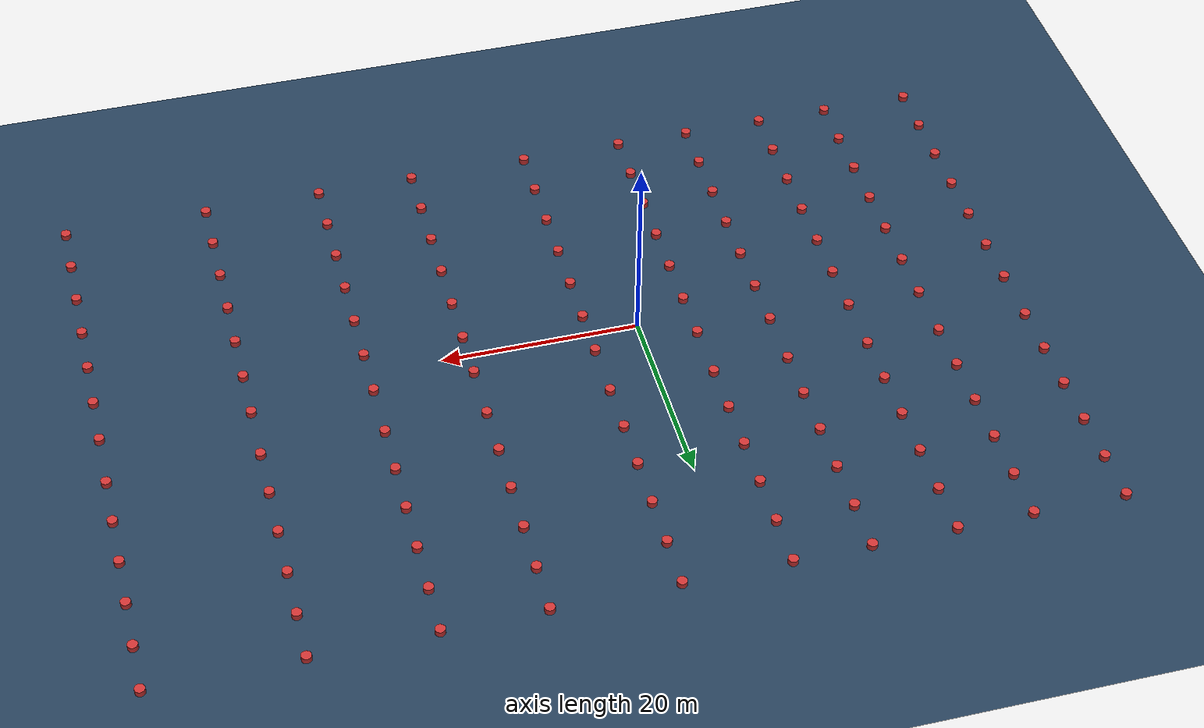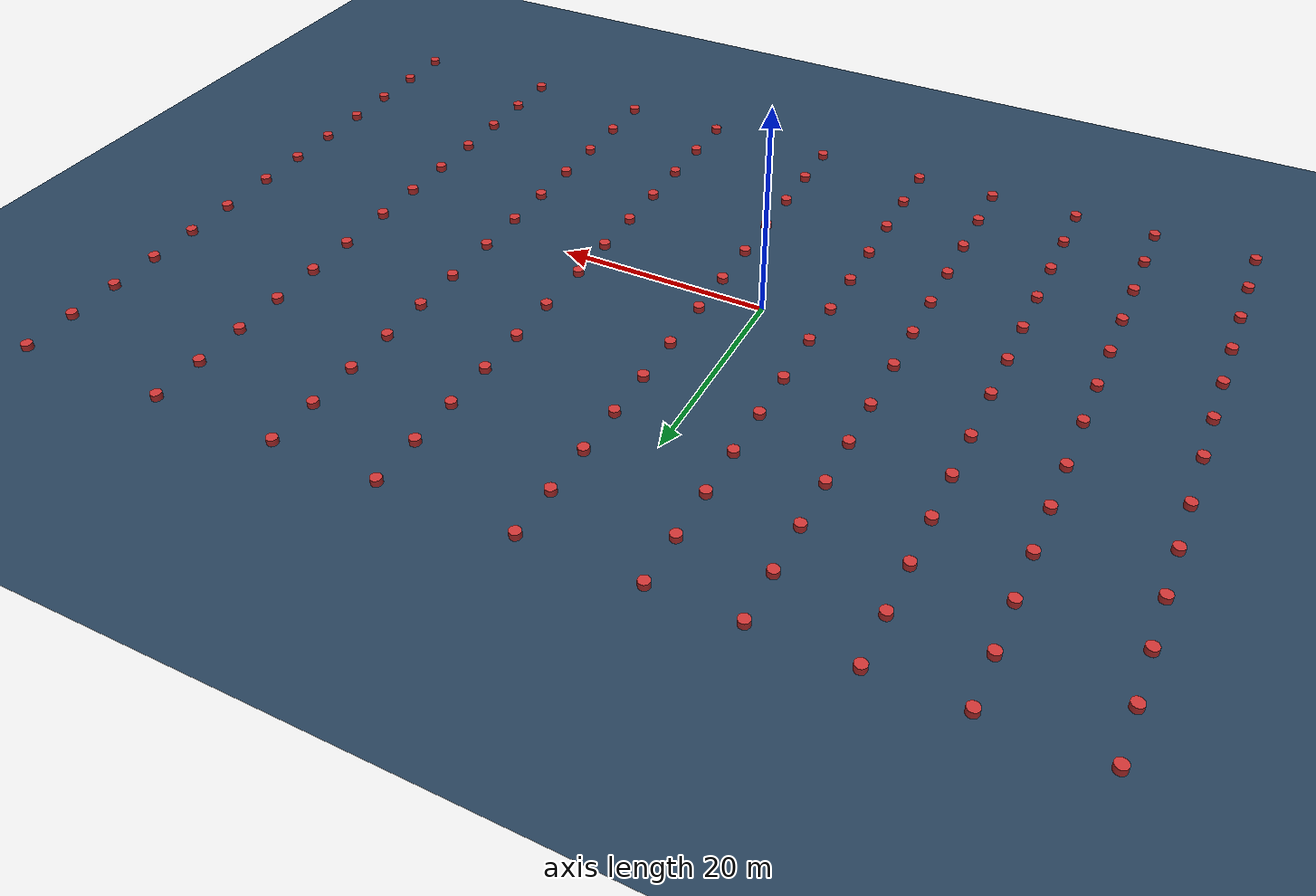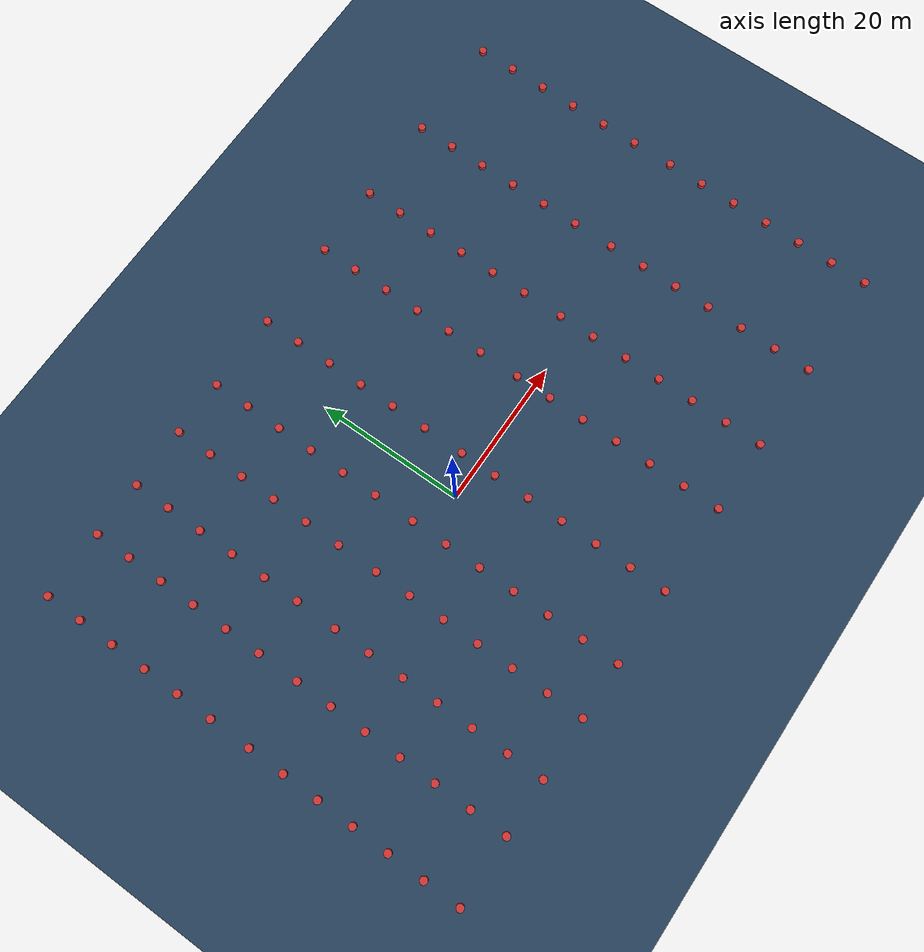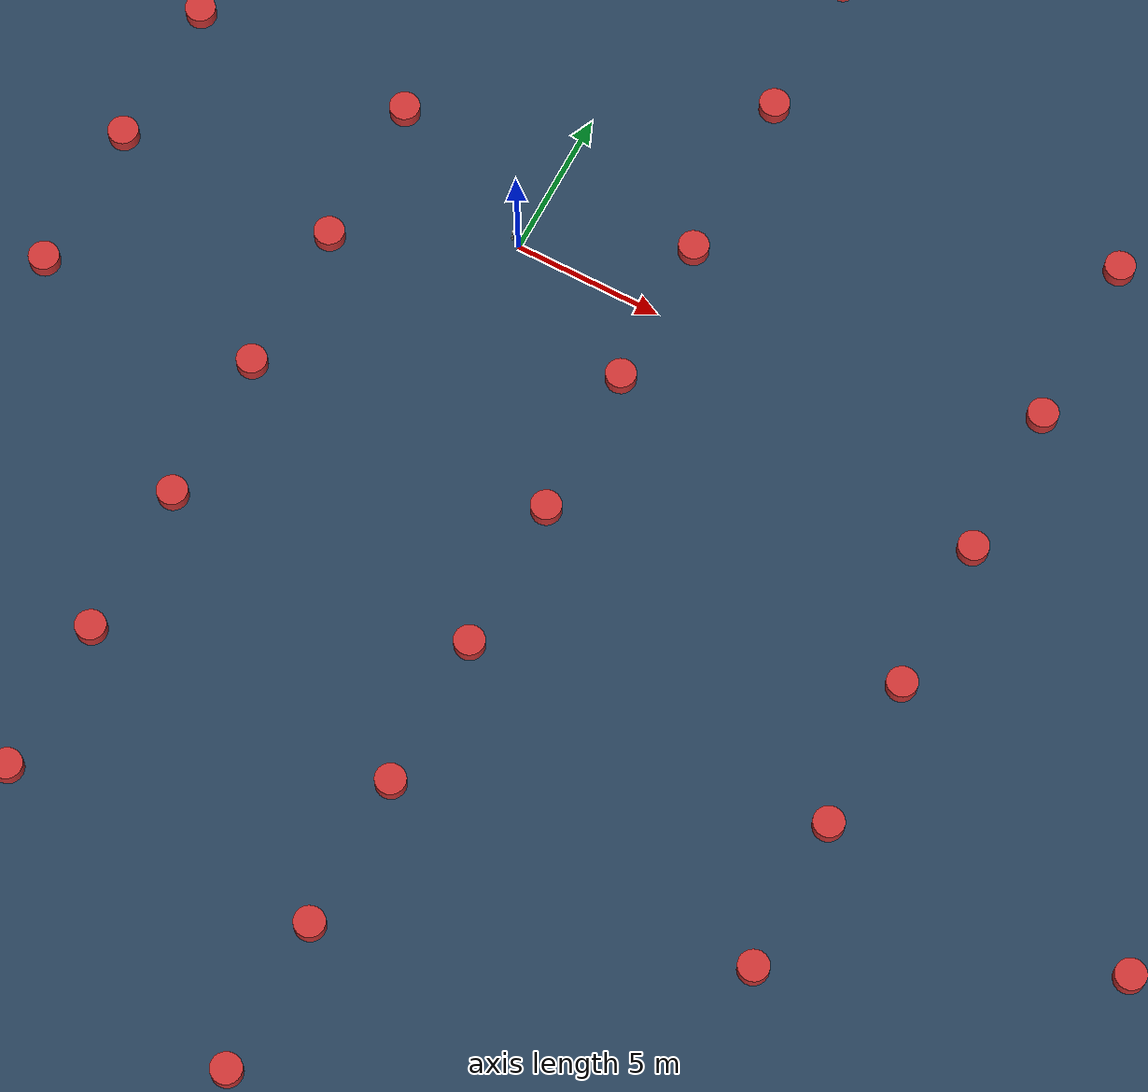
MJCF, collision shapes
<mujoco model="XXG scene">
  <include file="xxg.xml" />

  <statistic center="0 0 0.1" extent="0.8" />

  <visual>
    <headlight diffuse="0.6 0.6 0.6" ambient="0.3 0.3 0.3" specular="0 0 0" />
    <rgba haze="0.15 0.25 0.35 1" />
    <global azimuth="-130" elevation="-20" />
    <map znear="0.01" zfar="100"/>
  </visual>

  <asset>
    <texture type="skybox" builtin="gradient" rgb1="0.3 0.5 0.7" rgb2="0 0 0" width="512" height="3072" />
    <texture type="2d" name="groundplane" builtin="checker" mark="edge" rgb1="0.2 0.3 0.4" rgb2="0.1 0.2 0.3" markrgb="0.8 0.8 0.8" width="300" height="300" />
    <material name="groundplane" texture="groundplane" texuniform="true" texrepeat="5 5" reflectance="0.2" />
  </asset>

  <worldbody>
    <light pos="0 0 1.5" dir="0 0 -1" directional="true" />
    <geom name="floor" pos="0 0.0 0.01" size="0 0 0.05" type="plane" material="groundplane" />
    <geom name="Cylinder0"  type="cylinder" size="0.5 0.5" pos="5.0 -2.5 0.0" rgba="0.8 0.2 0.2 1"/>
    <geom name="Cylinder1"  type="cylinder" size="0.5 0.5" pos="5.0 2.5 0.0" rgba="0.8 0.2 0.2 1"/>
    <geom name="Cylinder2"  type="cylinder" size="0.5 0.5" pos="5.0 -7.5 0.0" rgba="0.8 0.2 0.2 1"/>
    <geom name="Cylinder3"  type="cylinder" size="0.5 0.5" pos="5.0 -12.5 0.0" rgba="0.8 0.2 0.2 1"/>
    <geom name="Cylinder4"  type="cylinder" size="0.5 0.5" pos="5.0 -17.5 0.0" rgba="0.8 0.2 0.2 1"/>
    <geom name="Cylinder5"  type="cylinder" size="0.5 0.5" pos="5.0 -22.5 0.0" rgba="0.8 0.2 0.2 1"/>
    <geom name="Cylinder6"  type="cylinder" size="0.5 0.5" pos="5.0 -27.5 0.0" rgba="0.8 0.2 0.2 1"/>
    <geom name="Cylinder7"  type="cylinder" size="0.5 0.5" pos="5.0 33.2 0.0" rgba="0.8 0.2 0.2 1"/>
    <geom name="Cylinder8"  type="cylinder" size="0.5 0.5" pos="5.0 28.2 0.0" rgba="0.8 0.2 0.2 1"/>
    <geom name="Cylinder9"  type="cylinder" size="0.5 0.5" pos="5.0 23.2 0.0" rgba="0.8 0.2 0.2 1"/>
    <geom name="Cylinder10"  type="cylinder" size="0.5 0.5" pos="5.0 18.2 0.0" rgba="0.8 0.2 0.2 1"/>
    <geom name="Cylinder11"  type="cylinder" size="0.5 0.5" pos="5.0 13.2 0.0" rgba="0.8 0.2 0.2 1"/>
    <geom name="Cylinder12"  type="cylinder" size="0.5 0.5" pos="5.0 8.2 0.0" rgba="0.8 0.2 0.2 1"/>
    <geom name="Cylinder13"  type="cylinder" size="0.5 0.5" pos="-5.5 -2.5 0.0" rgba="0.8 0.2 0.2 1"/>
    <geom name="Cylinder14"  type="cylinder" size="0.5 0.5" pos="-5.5 2.5 0.0" rgba="0.8 0.2 0.2 1"/>
    <geom name="Cylinder15"  type="cylinder" size="0.5 0.5" pos="-5.5 -7.5 0.0" rgba="0.8 0.2 0.2 1"/>
    <geom name="Cylinder16"  type="cylinder" size="0.5 0.5" pos="-5.5 -12.5 0.0" rgba="0.8 0.2 0.2 1"/>
    <geom name="Cylinder17"  type="cylinder" size="0.5 0.5" pos="-5.5 -17.5 0.0" rgba="0.8 0.2 0.2 1"/>
    <geom name="Cylinder18"  type="cylinder" size="0.5 0.5" pos="-5.5 -22.5 0.0" rgba="0.8 0.2 0.2 1"/>
    <geom name="Cylinder19"  type="cylinder" size="0.5 0.5" pos="-5.5 -27.5 0.0" rgba="0.8 0.2 0.2 1"/>
    <geom name="Cylinder20"  type="cylinder" size="0.5 0.5" pos="-5.5 33.2 0.0" rgba="0.8 0.2 0.2 1"/>
    <geom name="Cylinder21"  type="cylinder" size="0.5 0.5" pos="-5.5 28.2 0.0" rgba="0.8 0.2 0.2 1"/>
    <geom name="Cylinder22"  type="cylinder" size="0.5 0.5" pos="-5.5 23.2 0.0" rgba="0.8 0.2 0.2 1"/>
    <geom name="Cylinder23"  type="cylinder" size="0.5 0.5" pos="-5.5 18.2 0.0" rgba="0.8 0.2 0.2 1"/>
    <geom name="Cylinder24"  type="cylinder" size="0.5 0.5" pos="-5.5 13.2 0.0" rgba="0.8 0.2 0.2 1"/>
    <geom name="Cylinder25"  type="cylinder" size="0.5 0.5" pos="-5.5 8.2 0.0" rgba="0.8 0.2 0.2 1"/>
    <geom name="Cylinder26"  type="cylinder" size="0.5 0.5" pos="-13.1 -2.5 0.0" rgba="0.8 0.2 0.2 1"/>
    <geom name="Cylinder27"  type="cylinder" size="0.5 0.5" pos="-13.1 2.5 0.0" rgba="0.8 0.2 0.2 1"/>
    <geom name="Cylinder28"  type="cylinder" size="0.5 0.5" pos="-13.1 -7.5 0.0" rgba="0.8 0.2 0.2 1"/>
    <geom name="Cylinder29"  type="cylinder" size="0.5 0.5" pos="-13.1 -12.5 0.0" rgba="0.8 0.2 0.2 1"/>
    <geom name="Cylinder30"  type="cylinder" size="0.5 0.5" pos="-13.1 -17.5 0.0" rgba="0.8 0.2 0.2 1"/>
    <geom name="Cylinder31"  type="cylinder" size="0.5 0.5" pos="-13.1 -22.5 0.0" rgba="0.8 0.2 0.2 1"/>
    <geom name="Cylinder32"  type="cylinder" size="0.5 0.5" pos="-13.1 -27.5 0.0" rgba="0.8 0.2 0.2 1"/>
    <geom name="Cylinder33"  type="cylinder" size="0.5 0.5" pos="-13.1 33.2 0.0" rgba="0.8 0.2 0.2 1"/>
    <geom name="Cylinder34"  type="cylinder" size="0.5 0.5" pos="-13.1 28.2 0.0" rgba="0.8 0.2 0.2 1"/>
    <geom name="Cylinder35"  type="cylinder" size="0.5 0.5" pos="-13.1 23.2 0.0" rgba="0.8 0.2 0.2 1"/>
    <geom name="Cylinder36"  type="cylinder" size="0.5 0.5" pos="-13.1 18.2 0.0" rgba="0.8 0.2 0.2 1"/>
    <geom name="Cylinder37"  type="cylinder" size="0.5 0.5" pos="-13.1 13.2 0.0" rgba="0.8 0.2 0.2 1"/>
    <geom name="Cylinder38"  type="cylinder" size="0.5 0.5" pos="-13.1 8.2 0.0" rgba="0.8 0.2 0.2 1"/>
    <geom name="Cylinder39"  type="cylinder" size="0.5 0.5" pos="-21.4 -2.5 0.0" rgba="0.8 0.2 0.2 1"/>
    <geom name="Cylinder40"  type="cylinder" size="0.5 0.5" pos="-21.4 2.5 0.0" rgba="0.8 0.2 0.2 1"/>
    <geom name="Cylinder41"  type="cylinder" size="0.5 0.5" pos="-21.4 -7.5 0.0" rgba="0.8 0.2 0.2 1"/>
    <geom name="Cylinder42"  type="cylinder" size="0.5 0.5" pos="-21.4 -12.5 0.0" rgba="0.8 0.2 0.2 1"/>
    <geom name="Cylinder43"  type="cylinder" size="0.5 0.5" pos="-21.4 -17.5 0.0" rgba="0.8 0.2 0.2 1"/>
    <geom name="Cylinder44"  type="cylinder" size="0.5 0.5" pos="-21.4 -22.5 0.0" rgba="0.8 0.2 0.2 1"/>
    <geom name="Cylinder45"  type="cylinder" size="0.5 0.5" pos="-21.4 -27.5 0.0" rgba="0.8 0.2 0.2 1"/>
    <geom name="Cylinder46"  type="cylinder" size="0.5 0.5" pos="-21.4 33.2 0.0" rgba="0.8 0.2 0.2 1"/>
    <geom name="Cylinder47"  type="cylinder" size="0.5 0.5" pos="-21.4 28.2 0.0" rgba="0.8 0.2 0.2 1"/>
    <geom name="Cylinder48"  type="cylinder" size="0.5 0.5" pos="-21.4 23.2 0.0" rgba="0.8 0.2 0.2 1"/>
    <geom name="Cylinder49"  type="cylinder" size="0.5 0.5" pos="-21.4 18.2 0.0" rgba="0.8 0.2 0.2 1"/>
    <geom name="Cylinder50"  type="cylinder" size="0.5 0.5" pos="-21.4 13.2 0.0" rgba="0.8 0.2 0.2 1"/>
    <geom name="Cylinder51"  type="cylinder" size="0.5 0.5" pos="-21.4 8.2 0.0" rgba="0.8 0.2 0.2 1"/>
    <geom name="Cylinder52"  type="cylinder" size="0.5 0.5" pos="-28.9 -2.5 0.0" rgba="0.8 0.2 0.2 1"/>
    <geom name="Cylinder53"  type="cylinder" size="0.5 0.5" pos="-28.9 2.5 0.0" rgba="0.8 0.2 0.2 1"/>
    <geom name="Cylinder54"  type="cylinder" size="0.5 0.5" pos="-28.9 -7.5 0.0" rgba="0.8 0.2 0.2 1"/>
    <geom name="Cylinder55"  type="cylinder" size="0.5 0.5" pos="-28.9 -12.5 0.0" rgba="0.8 0.2 0.2 1"/>
    <geom name="Cylinder56"  type="cylinder" size="0.5 0.5" pos="-28.9 -17.5 0.0" rgba="0.8 0.2 0.2 1"/>
    <geom name="Cylinder57"  type="cylinder" size="0.5 0.5" pos="-28.9 -22.5 0.0" rgba="0.8 0.2 0.2 1"/>
    <geom name="Cylinder58"  type="cylinder" size="0.5 0.5" pos="-28.9 -27.5 0.0" rgba="0.8 0.2 0.2 1"/>
    <geom name="Cylinder59"  type="cylinder" size="0.5 0.5" pos="-28.9 33.2 0.0" rgba="0.8 0.2 0.2 1"/>
    <geom name="Cylinder60"  type="cylinder" size="0.5 0.5" pos="-28.9 28.2 0.0" rgba="0.8 0.2 0.2 1"/>
    <geom name="Cylinder61"  type="cylinder" size="0.5 0.5" pos="-28.9 23.2 0.0" rgba="0.8 0.2 0.2 1"/>
    <geom name="Cylinder62"  type="cylinder" size="0.5 0.5" pos="-28.9 18.2 0.0" rgba="0.8 0.2 0.2 1"/>
    <geom name="Cylinder63"  type="cylinder" size="0.5 0.5" pos="-28.9 13.2 0.0" rgba="0.8 0.2 0.2 1"/>
    <geom name="Cylinder64"  type="cylinder" size="0.5 0.5" pos="-28.9 8.2 0.0" rgba="0.8 0.2 0.2 1"/>
    <geom name="Cylinder65"  type="cylinder" size="0.5 0.5" pos="-38.1 -2.5 0.0" rgba="0.8 0.2 0.2 1"/>
    <geom name="Cylinder66"  type="cylinder" size="0.5 0.5" pos="-38.1 2.5 0.0" rgba="0.8 0.2 0.2 1"/>
    <geom name="Cylinder67"  type="cylinder" size="0.5 0.5" pos="-38.1 -7.5 0.0" rgba="0.8 0.2 0.2 1"/>
    <geom name="Cylinder68"  type="cylinder" size="0.5 0.5" pos="-38.1 -12.5 0.0" rgba="0.8 0.2 0.2 1"/>
    <geom name="Cylinder69"  type="cylinder" size="0.5 0.5" pos="-38.1 -17.5 0.0" rgba="0.8 0.2 0.2 1"/>
    <geom name="Cylinder70"  type="cylinder" size="0.5 0.5" pos="-38.1 -22.5 0.0" rgba="0.8 0.2 0.2 1"/>
    <geom name="Cylinder71"  type="cylinder" size="0.5 0.5" pos="-38.1 -27.5 0.0" rgba="0.8 0.2 0.2 1"/>
    <geom name="Cylinder72"  type="cylinder" size="0.5 0.5" pos="-38.1 33.2 0.0" rgba="0.8 0.2 0.2 1"/>
    <geom name="Cylinder73"  type="cylinder" size="0.5 0.5" pos="-38.1 28.2 0.0" rgba="0.8 0.2 0.2 1"/>
    <geom name="Cylinder74"  type="cylinder" size="0.5 0.5" pos="-38.1 23.2 0.0" rgba="0.8 0.2 0.2 1"/>
    <geom name="Cylinder75"  type="cylinder" size="0.5 0.5" pos="-38.1 18.2 0.0" rgba="0.8 0.2 0.2 1"/>
    <geom name="Cylinder76"  type="cylinder" size="0.5 0.5" pos="-38.1 13.2 0.0" rgba="0.8 0.2 0.2 1"/>
    <geom name="Cylinder77"  type="cylinder" size="0.5 0.5" pos="-38.1 8.2 0.0" rgba="0.8 0.2 0.2 1"/>
    <geom name="Cylinder78"  type="cylinder" size="0.5 0.5" pos="17.3 -2.5 0.0" rgba="0.8 0.2 0.2 1"/>
    <geom name="Cylinder79"  type="cylinder" size="0.5 0.5" pos="17.3 2.5 0.0" rgba="0.8 0.2 0.2 1"/>
    <geom name="Cylinder80"  type="cylinder" size="0.5 0.5" pos="17.3 -7.5 0.0" rgba="0.8 0.2 0.2 1"/>
    <geom name="Cylinder81"  type="cylinder" size="0.5 0.5" pos="17.3 -12.5 0.0" rgba="0.8 0.2 0.2 1"/>
    <geom name="Cylinder82"  type="cylinder" size="0.5 0.5" pos="17.3 -17.5 0.0" rgba="0.8 0.2 0.2 1"/>
    <geom name="Cylinder83"  type="cylinder" size="0.5 0.5" pos="17.3 -22.5 0.0" rgba="0.8 0.2 0.2 1"/>
    <geom name="Cylinder84"  type="cylinder" size="0.5 0.5" pos="17.3 -27.5 0.0" rgba="0.8 0.2 0.2 1"/>
    <geom name="Cylinder85"  type="cylinder" size="0.5 0.5" pos="17.3 33.2 0.0" rgba="0.8 0.2 0.2 1"/>
    <geom name="Cylinder86"  type="cylinder" size="0.5 0.5" pos="17.3 28.2 0.0" rgba="0.8 0.2 0.2 1"/>
    <geom name="Cylinder87"  type="cylinder" size="0.5 0.5" pos="17.3 23.2 0.0" rgba="0.8 0.2 0.2 1"/>
    <geom name="Cylinder88"  type="cylinder" size="0.5 0.5" pos="17.3 18.2 0.0" rgba="0.8 0.2 0.2 1"/>
    <geom name="Cylinder89"  type="cylinder" size="0.5 0.5" pos="17.3 13.2 0.0" rgba="0.8 0.2 0.2 1"/>
    <geom name="Cylinder90"  type="cylinder" size="0.5 0.5" pos="17.3 8.2 0.0" rgba="0.8 0.2 0.2 1"/>
    <geom name="Cylinder91"  type="cylinder" size="0.5 0.5" pos="27.3 -2.5 0.0" rgba="0.8 0.2 0.2 1"/>
    <geom name="Cylinder92"  type="cylinder" size="0.5 0.5" pos="27.3 2.5 0.0" rgba="0.8 0.2 0.2 1"/>
    <geom name="Cylinder93"  type="cylinder" size="0.5 0.5" pos="27.3 -7.5 0.0" rgba="0.8 0.2 0.2 1"/>
    <geom name="Cylinder94"  type="cylinder" size="0.5 0.5" pos="27.3 -12.5 0.0" rgba="0.8 0.2 0.2 1"/>
    <geom name="Cylinder95"  type="cylinder" size="0.5 0.5" pos="27.3 -17.5 0.0" rgba="0.8 0.2 0.2 1"/>
    <geom name="Cylinder96"  type="cylinder" size="0.5 0.5" pos="27.3 -22.5 0.0" rgba="0.8 0.2 0.2 1"/>
    <geom name="Cylinder97"  type="cylinder" size="0.5 0.5" pos="27.3 -27.5 0.0" rgba="0.8 0.2 0.2 1"/>
    <geom name="Cylinder98"  type="cylinder" size="0.5 0.5" pos="27.3 33.2 0.0" rgba="0.8 0.2 0.2 1"/>
    <geom name="Cylinder99"  type="cylinder" size="0.5 0.5" pos="27.3 28.2 0.0" rgba="0.8 0.2 0.2 1"/>
    <geom name="Cylinder100"  type="cylinder" size="0.5 0.5" pos="27.3 23.2 0.0" rgba="0.8 0.2 0.2 1"/>
    <geom name="Cylinder101"  type="cylinder" size="0.5 0.5" pos="27.3 18.2 0.0" rgba="0.8 0.2 0.2 1"/>
    <geom name="Cylinder102"  type="cylinder" size="0.5 0.5" pos="27.3 13.2 0.0" rgba="0.8 0.2 0.2 1"/>
    <geom name="Cylinder103"  type="cylinder" size="0.5 0.5" pos="27.3 8.2 0.0" rgba="0.8 0.2 0.2 1"/>
    <geom name="Cylinder104"  type="cylinder" size="0.5 0.5" pos="39.3 -2.5 0.0" rgba="0.8 0.2 0.2 1"/>
    <geom name="Cylinder105"  type="cylinder" size="0.5 0.5" pos="39.3 2.5 0.0" rgba="0.8 0.2 0.2 1"/>
    <geom name="Cylinder106"  type="cylinder" size="0.5 0.5" pos="39.3 -7.5 0.0" rgba="0.8 0.2 0.2 1"/>
    <geom name="Cylinder107"  type="cylinder" size="0.5 0.5" pos="39.3 -12.5 0.0" rgba="0.8 0.2 0.2 1"/>
    <geom name="Cylinder108"  type="cylinder" size="0.5 0.5" pos="39.3 -17.5 0.0" rgba="0.8 0.2 0.2 1"/>
    <geom name="Cylinder109"  type="cylinder" size="0.5 0.5" pos="39.3 -22.5 0.0" rgba="0.8 0.2 0.2 1"/>
    <geom name="Cylinder110"  type="cylinder" size="0.5 0.5" pos="39.3 -27.5 0.0" rgba="0.8 0.2 0.2 1"/>
    <geom name="Cylinder111"  type="cylinder" size="0.5 0.5" pos="39.3 33.2 0.0" rgba="0.8 0.2 0.2 1"/>
    <geom name="Cylinder112"  type="cylinder" size="0.5 0.5" pos="39.3 28.2 0.0" rgba="0.8 0.2 0.2 1"/>
    <geom name="Cylinder113"  type="cylinder" size="0.5 0.5" pos="39.3 23.2 0.0" rgba="0.8 0.2 0.2 1"/>
    <geom name="Cylinder114"  type="cylinder" size="0.5 0.5" pos="39.3 18.2 0.0" rgba="0.8 0.2 0.2 1"/>
    <geom name="Cylinder115"  type="cylinder" size="0.5 0.5" pos="39.3 13.2 0.0" rgba="0.8 0.2 0.2 1"/>
    <geom name="Cylinder116"  type="cylinder" size="0.5 0.5" pos="39.3 8.2 0.0" rgba="0.8 0.2 0.2 1"/>
    <geom name="Cylinder117"  type="cylinder" size="0.5 0.5" pos="53.9 -2.5 0.0" rgba="0.8 0.2 0.2 1"/>
    <geom name="Cylinder118"  type="cylinder" size="0.5 0.5" pos="53.9 2.5 0.0" rgba="0.8 0.2 0.2 1"/>
    <geom name="Cylinder119"  type="cylinder" size="0.5 0.5" pos="53.9 -7.5 0.0" rgba="0.8 0.2 0.2 1"/>
    <geom name="Cylinder120"  type="cylinder" size="0.5 0.5" pos="53.9 -12.5 0.0" rgba="0.8 0.2 0.2 1"/>
    <geom name="Cylinder121"  type="cylinder" size="0.5 0.5" pos="53.9 -17.5 0.0" rgba="0.8 0.2 0.2 1"/>
    <geom name="Cylinder122"  type="cylinder" size="0.5 0.5" pos="53.9 -22.5 0.0" rgba="0.8 0.2 0.2 1"/>
    <geom name="Cylinder123"  type="cylinder" size="0.5 0.5" pos="53.9 -27.5 0.0" rgba="0.8 0.2 0.2 1"/>
    <geom name="Cylinder124"  type="cylinder" size="0.5 0.5" pos="53.9 33.2 0.0" rgba="0.8 0.2 0.2 1"/>
    <geom name="Cylinder125"  type="cylinder" size="0.5 0.5" pos="53.9 28.2 0.0" rgba="0.8 0.2 0.2 1"/>
    <geom name="Cylinder126"  type="cylinder" size="0.5 0.5" pos="53.9 23.2 0.0" rgba="0.8 0.2 0.2 1"/>
    <geom name="Cylinder127"  type="cylinder" size="0.5 0.5" pos="53.9 18.2 0.0" rgba="0.8 0.2 0.2 1"/>
    <geom name="Cylinder128"  type="cylinder" size="0.5 0.5" pos="53.9 13.2 0.0" rgba="0.8 0.2 0.2 1"/>
    <geom name="Cylinder129"  type="cylinder" size="0.5 0.5" pos="53.9 8.2 0.0" rgba="0.8 0.2 0.2 1"/>
  </worldbody>
</mujoco>

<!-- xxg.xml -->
<mujoco model="DOG">
  <compiler angle="radian" meshdir="assets/"/>

  <asset>
    <mesh name="BASE_LINK" file="BASE_LINK.STL"/>
    <mesh name="FBL_ABAD_LINK" file="FBL_ABAD_LINK.STL"/>
    <mesh name="FBL_HIP_LINK" file="FBL_HIP_LINK.STL"/>
    <mesh name="FBL_KNEE_LINK" file="FBL_KNEE_LINK.STL"/>
    <mesh name="FBL_FOOT_LINK" file="FBL_FOOT_LINK.STL"/>
    <mesh name="FAR_ABAD_LINK" file="FAR_ABAD_LINK.STL"/>
    <mesh name="FAR_HIP_LINK" file="FAR_HIP_LINK.STL"/>
    <mesh name="FAR_KNEE_LINK" file="FAR_KNEE_LINK.STL"/>
    <mesh name="FAR_FOOT_LINK" file="FAR_FOOT_LINK.STL"/>
    <mesh name="RAR_ABAD_LINK" file="RAR_ABAD_LINK.STL"/>
    <mesh name="RAR_HIP_LINK" file="RAR_HIP_LINK.STL"/>
    <mesh name="RAR_KNEE_LINK" file="RAR_KNEE_LINK.STL"/>
    <mesh name="RAR_FOOT_LINK" file="RAR_FOOT_LINK.STL"/>
    <mesh name="RBL_ABAD_LINK" file="RBL_ABAD_LINK.STL"/>
    <mesh name="RBL_HIP_LINK" file="RBL_HIP_LINK.STL"/>
    <mesh name="RBL_KNEE_LINK" file="RBL_KNEE_LINK.STL"/>
    <mesh name="RBL_FOOT_LINK" file="RBL_FOOT_LINK.STL"/>
    <mesh name="HEAD1_LINK" file="HEAD1_LINK.STL"/>
    <mesh name="HEAD2_LINK" file="HEAD2_LINK.STL"/>
  </asset>

  <worldbody>
    <body name="BASE_LINK" pos="0 0 1.0">
      <inertial pos="1.8341473e-02 -1.9475667e-04 1.6646741e-02" quat="-0 0 0 1" mass="5.6608325" diaginertia="0.039340224 8.8059075e-02 7.6312096e-02"/>
      <freejoint />
      <site name="imu" pos="0.0 0 0.0" />
    <!-- add livox_imu -->
    <site name="livox_imu" pos="0.18 0.0 0.3" quat="1.0 0.0 0.0 0.0"/>
    <!-- add camera imu -->
    <site name="camera_imu" pos="0.18 0.0 0.3" quat="1.0 0.0 0.0 0.0"/>

    <geom type="mesh" contype="0" conaffinity="0" group="1" density="0" rgba="0.75294 0.75294 0.75294 1.0" mesh="BASE_LINK"/>
    <geom size="0.2 0.075 0.055" type="box" rgba="0.75294 0.75294 0.75294 0.0"/>
    <geom pos="0.1775 0 0.1164" quat="0.965249 0 0.26133 0" type="mesh" contype="0" conaffinity="0" group="1" density="0" rgba="0.75294 0.75294 0.75294 1.0" mesh="HEAD1_LINK"/>
    <geom pos="0.1775 0 0.1164" quat="0.965249 0 0.26133 0" type="mesh" contype="0" conaffinity="0" group="1" density="0" rgba="0.75294 0.75294 0.75294 1.0" mesh="HEAD2_LINK"/>
    <geom size="0.05 0.1 0.06" pos="0.204181 0 0.181884" quat="0.965249 0 0.26133 0" type="box" rgba="0.75294 0.75294 0.75294 0.0"/>
    <geom size="0.035 0.05 0.04" pos="0.27432 0 0.123528" quat="0.965249 0 0.26133 0" type="box" rgba="0.75294 0.75294 0.75294 0.0"/>
    <body name="FBL_ABAD_LINK" pos="0.1305 0.0377 0">
      <inertial pos="-0.0258732 0.00474653 0" quat="0.446156 0.446156 0.548585 0.548585" mass="0.29007" diaginertia="0.000234429 0.000228281 4.61129e-05"/>
      <joint name="FBL_ABAD_JOINT" pos="0 0 0" axis="1 0 0" range="-0.4887 0.4887" actuatorfrcrange="-20 20"/>
      <geom type="mesh" contype="0" conaffinity="0" group="1" density="0" rgba="0.75294 0.75294 0.75294 1.0" mesh="FBL_ABAD_LINK"/>
      <body name="FBL_HIP_LINK">
        <inertial pos="0 0.0475203 -0.0615104" quat="0.992663 0.120643 7.95638e-06 -0.00808508" mass="0.698577" diaginertia="0.00315469 0.00310141 0.000383698"/>
        <joint name="FBL_HIP_JOINT" pos="0 0 0" axis="0 1 0" range="-2.967 2.967" actuatorfrcrange="-20 20"/>
        <geom type="mesh" contype="0" conaffinity="0" group="1" density="0" rgba="0.75294 0.75294 0.75294 1.0" mesh="FBL_HIP_LINK"/>
        <geom size="0.025 0.015 0.03" pos="-0.01 0.085 -0.06" type="box" rgba="0.75294 0.75294 0.75294 1.0"/>
        <body name="FBL_KNEE_LINK" pos="0 0.08786 -0.1307">
          <inertial pos="0.00368489 0.0063771 -0.0635258" quat="0.608469 0.0177668 -0.0332576 0.792681" mass="0.288584" diaginertia="0.00161384 0.00159203 5.37708e-05"/>
          <joint name="FBL_KNEE_JOINT" pos="0 0 0" axis="0 1 0" range="-2.723 2.702" actuatorfrcrange="-20 20"/>
          <geom type="mesh" contype="0" conaffinity="0" group="1" density="0" rgba="0.49804 0.49804 0.49804 1.0" mesh="FBL_KNEE_LINK"/>
          <geom size="0.015 0.01 0.045" pos="0 0 -0.05" quat="0.994493 0 0.104807 0" type="box" rgba="0.49804 0.49804 0.49804 1.0"/>
          <geom pos="0 0 -0.1425" type="mesh" contype="0" conaffinity="0" group="1" density="0" rgba="0.75294 0.75294 0.75294 1.0" mesh="FBL_FOOT_LINK"/>
          <geom size="0.03" pos="0 0 -0.1425" quat="0.707388 0.706825 0 0" rgba="0.75294 0.75294 0.75294 1.0"/>
        </body>
      </body>
    </body>
    <body name="FAR_ABAD_LINK" pos="0.1305 -0.0377 0">
      <inertial pos="-0.0258732 -0.00474653 0" quat="0.548585 0.548585 0.446156 0.446156" mass="0.29007" diaginertia="0.000234429 0.000228281 4.61129e-05"/>
      <joint name="FAR_ABAD_JOINT" pos="0 0 0" axis="1 0 0" range="-0.4887 0.4887" actuatorfrcrange="-20 20"/>
      <geom type="mesh" contype="0" conaffinity="0" group="1" density="0" rgba="0.75294 0.75294 0.75294 1.0" mesh="FAR_ABAD_LINK"/>
      <body name="FAR_HIP_LINK">
        <inertial pos="0 -0.0475203 -0.0615104" quat="0.992663 -0.120643 7.95638e-06 0.00808508" mass="0.698577" diaginertia="0.00315469 0.00310141 0.000383698"/>
        <joint name="FAR_HIP_JOINT" pos="0 0 0" axis="0 1 0" range="-2.967 2.967" actuatorfrcrange="-20 20"/>
        <geom type="mesh" contype="0" conaffinity="0" group="1" density="0" rgba="0.75294 0.75294 0.75294 1.0" mesh="FAR_HIP_LINK"/>
        <geom size="0.025 0.015 0.03" pos="-0.01 -0.085 -0.06" type="box" rgba="0.75294 0.75294 0.75294 1.0"/>
        <body name="FAR_KNEE_LINK" pos="0 -0.08786 -0.1307">
          <inertial pos="0.00368489 -0.0063771 -0.0635258" quat="0.792681 -0.0332576 0.0177668 0.608469" mass="0.288584" diaginertia="0.00161384 0.00159203 5.37708e-05"/>
          <joint name="FAR_KNEE_JOINT" pos="0 0 0" axis="0 1 0" range="-2.723 2.702" actuatorfrcrange="-20 20"/>
          <geom type="mesh" contype="0" conaffinity="0" group="1" density="0" rgba="0.49804 0.49804 0.49804 1.0" mesh="FAR_KNEE_LINK"/>
          <geom size="0.015 0.01 0.045" pos="0 0 -0.05" quat="0.994493 0 0.104807 0" type="box" rgba="0.49804 0.49804 0.49804 1.0"/>
          <geom pos="0 0 -0.1425" type="mesh" contype="0" conaffinity="0" group="1" density="0" rgba="0.75294 0.75294 0.75294 1.0" mesh="FAR_FOOT_LINK"/>
          <geom size="0.03" pos="0 0 -0.1425" quat="0.707388 0.706825 0 0" rgba="0.75294 0.75294 0.75294 1.0"/>
        </body>
      </body>
    </body>
    <body name="RAR_ABAD_LINK" pos="-0.1305 -0.0377 0">
      <inertial pos="0.0258732 -0.00474653 0" quat="0.446156 0.446156 0.548585 0.548585" mass="0.29007" diaginertia="0.000234429 0.000228281 4.61129e-05"/>
      <joint name="RAR_ABAD_JOINT" pos="0 0 0" axis="1 0 0" range="-0.4887 0.4887" actuatorfrcrange="-20 20"/>
      <geom type="mesh" contype="0" conaffinity="0" group="1" density="0" rgba="0.75294 0.75294 0.75294 1.0" mesh="RAR_ABAD_LINK"/>
      <body name="RAR_HIP_LINK">
        <inertial pos="0 -0.0475203 -0.0615104" quat="0.992663 -0.120643 7.95638e-06 0.00808508" mass="0.698577" diaginertia="0.00315469 0.00310141 0.000383698"/>
        <joint name="RAR_HIP_JOINT" pos="0 0 0" axis="0 1 0" range="-2.967 2.967" actuatorfrcrange="-20 20"/>
        <geom type="mesh" contype="0" conaffinity="0" group="1" density="0" rgba="0.75294 0.75294 0.75294 1.0" mesh="RAR_HIP_LINK"/>
        <geom size="0.025 0.015 0.03" pos="0 -0.085 -0.06" type="box" rgba="0.75294 0.75294 0.75294 1.0"/>
        <body name="RAR_KNEE_LINK" pos="0 -0.08786 -0.1307">
          <inertial pos="0.00368489 -0.0063771 -0.0634925" quat="0.792566 -0.0333078 0.0177921 0.608615" mass="0.288584" diaginertia="0.0016124 0.00159058 5.37526e-05"/>
          <joint name="RAR_KNEE_JOINT" pos="0 0 0" axis="0 1 0" range="-2.723 2.702" actuatorfrcrange="-20 20"/>
          <geom type="mesh" contype="0" conaffinity="0" group="1" density="0" rgba="0.49804 0.49804 0.49804 1.0" mesh="RAR_KNEE_LINK"/>
          <geom size="0.015 0.01 0.045" pos="-0.01 0 -0.04" quat="0.930508 0 0.366273 0" type="box" rgba="0.49804 0.49804 0.49804 1.0"/>
          <geom pos="0 0 -0.1357" quat="1 0 0 0" type="mesh" contype="0" conaffinity="0" group="1" density="0" rgba="0.75294 0.75294 0.75294 1.0" mesh="RAR_FOOT_LINK"/>
          <geom size="0.03" pos="0 0 -0.1357" quat="0.707388 0.706825 0 0" rgba="0.75294 0.75294 0.75294 1.0"/>
        </body>
      </body>
    </body>
    <body name="RBL_ABAD_LINK" pos="-0.1305 0.0377 0">
      <inertial pos="0.0258732 0.00474653 0" quat="0.548585 0.548585 0.446156 0.446156" mass="0.29007" diaginertia="0.000234429 0.000228281 4.61129e-05"/>
      <joint name="RBL_ABAD_JOINT" pos="0 0 0" axis="1 0 0" range="-0.4887 0.4887" actuatorfrcrange="-20 20"/>
      <geom type="mesh" contype="0" conaffinity="0" group="1" density="0" rgba="0.75294 0.75294 0.75294 1.0" mesh="RBL_ABAD_LINK"/>
      <body name="RBL_HIP_LINK">
        <inertial pos="0 0.0475203 -0.0615104" quat="0.992663 0.120643 7.95638e-06 -0.00808508" mass="0.698577" diaginertia="0.00315469 0.00310141 0.000383698"/>
        <joint name="RBL_HIP_JOINT" pos="0 0 0" axis="0 1 0" range="-2.967 2.967" actuatorfrcrange="-20 20"/>
        <geom type="mesh" contype="0" conaffinity="0" group="1" density="0" rgba="0.75294 0.75294 0.75294 1.0" mesh="RBL_HIP_LINK"/>
        <geom size="0.025 0.015 0.03" pos="0 0.085 -0.06" type="box" rgba="0.75294 0.75294 0.75294 1.0"/>
        <body name="RBL_KNEE_LINK" pos="0 0.08786 -0.1307">
          <inertial pos="0.00368489 0.0063771 -0.0634925" quat="0.608615 0.0177921 -0.0333078 0.792566" mass="0.288584" diaginertia="0.0016124 0.00159058 5.37526e-05"/>
          <joint name="RBL_KNEE_JOINT" pos="0 0 0" axis="0 1 0" range="-2.723 2.702" actuatorfrcrange="-20 20"/>
          <geom type="mesh" contype="0" conaffinity="0" group="1" density="0" rgba="0.49804 0.49804 0.49804 1.0" mesh="RBL_KNEE_LINK"/>
          <geom size="0.015 0.01 0.045" pos="-0.01 0 -0.04" quat="0.930508 0 0.366273 0" type="box" rgba="0.49804 0.49804 0.49804 1.0"/>
          <geom pos="0 0 -0.1357" quat="1 0 0 0" type="mesh" contype="0" conaffinity="0" group="1" density="0" rgba="0.75294 0.75294 0.75294 1.0" mesh="RBL_FOOT_LINK"/>
          <geom size="0.03" pos="0 0 -0.1357" quat="0.707388 0.706825 0 0" rgba="0.75294 0.75294 0.75294 1.0"/>
        </body>
      </body>
    </body>
  </body>
  </worldbody>
    <actuator>
        <motor name="FR_ABAD_LINK" joint="FAR_ABAD_JOINT" />
        <motor name="FR_HIP_LINK" joint="FAR_HIP_JOINT" />
        <motor name="FR_KNEE_LINK" joint="FAR_KNEE_JOINT" />
        <motor name="FL_ABAD_LINK" joint="FBL_ABAD_JOINT" />
        <motor name="FL_HIP_LINK" joint="FBL_HIP_JOINT" />
        <motor name="FL_KNEE_LINK" joint="FBL_KNEE_JOINT" />
        <motor name="RR_ABAD_LINK" joint="RAR_ABAD_JOINT" />
        <motor name="RR_HIP_LINK" joint="RAR_HIP_JOINT" />
        <motor name="RR_KNEE_LINK" joint="RAR_KNEE_JOINT" />
        <motor name="RL_ABAD_LINK" joint="RBL_ABAD_JOINT" />
        <motor name="RL_HIP_LINK" joint="RBL_HIP_JOINT" />
        <motor name="RL_KNEE_LINK" joint="RBL_KNEE_JOINT" />
    </actuator>

    <sensor>
        <jointpos name="FR_hip_pos" joint="FAR_ABAD_JOINT" />
        <jointpos name="FR_thigh_pos" joint="FAR_HIP_JOINT" />
        <jointpos name="FR_calf_pos" joint="FAR_KNEE_JOINT" />
        <jointpos name="FL_hip_pos" joint="FBL_ABAD_JOINT" />
        <jointpos name="FL_thigh_pos" joint="FBL_HIP_JOINT" />
        <jointpos name="FL_calf_pos" joint="FBL_KNEE_JOINT" />
        <jointpos name="RR_hip_pos" joint="RAR_ABAD_JOINT" />
        <jointpos name="RR_thigh_pos" joint="RAR_HIP_JOINT" />
        <jointpos name="RR_calf_pos" joint="RAR_KNEE_JOINT" />
        <jointpos name="RL_hip_pos" joint="RBL_ABAD_JOINT" />
        <jointpos name="RL_thigh_pos" joint="RBL_HIP_JOINT" />
        <jointpos name="RL_calf_pos" joint="RBL_KNEE_JOINT" />

        <jointvel name="FR_hip_vel" joint="FAR_ABAD_JOINT" />
        <jointvel name="FR_thigh_vel" joint="FAR_HIP_JOINT" />
        <jointvel name="FR_calf_vel" joint="FAR_KNEE_JOINT" />
        <jointvel name="FL_hip_vel" joint="FBL_ABAD_JOINT" />
        <jointvel name="FL_thigh_vel" joint="FBL_HIP_JOINT" />
        <jointvel name="FL_calf_vel" joint="FBL_KNEE_JOINT" />
        <jointvel name="RR_hip_vel" joint="RAR_ABAD_JOINT" />
        <jointvel name="RR_thigh_vel" joint="RAR_HIP_JOINT" />
        <jointvel name="RR_calf_vel" joint="RAR_KNEE_JOINT" />
        <jointvel name="RL_hip_vel" joint="RBL_ABAD_JOINT" />
        <jointvel name="RL_thigh_vel" joint="RBL_HIP_JOINT" />
        <jointvel name="RL_calf_vel" joint="RBL_KNEE_JOINT" />

        <jointactuatorfrc name="FR_hip_torque" joint="FAR_ABAD_JOINT" noise="0.01" />
        <jointactuatorfrc name="FR_thigh_torque" joint="FAR_HIP_JOINT" noise="0.01" />
        <jointactuatorfrc name="FR_calf_torque" joint="FAR_KNEE_JOINT" noise="0.01" />
        <jointactuatorfrc name="FL_hip_torque" joint="FBL_ABAD_JOINT" noise="0.01" />
        <jointactuatorfrc name="FL_thigh_torque" joint="FBL_HIP_JOINT" noise="0.01" />
        <jointactuatorfrc name="FL_calf_torque" joint="FBL_KNEE_JOINT" noise="0.01" />
        <jointactuatorfrc name="RR_hip_torque" joint="RAR_ABAD_JOINT" noise="0.01" />
        <jointactuatorfrc name="RR_thigh_torque" joint="RAR_HIP_JOINT" noise="0.01" />
        <jointactuatorfrc name="RR_calf_torque" joint="RAR_KNEE_JOINT" noise="0.01" />
        <jointactuatorfrc name="RL_hip_torque" joint="RBL_ABAD_JOINT" noise="0.01" />
        <jointactuatorfrc name="RL_thigh_torque" joint="RBL_HIP_JOINT" noise="0.01" />
        <jointactuatorfrc name="RL_calf_torque" joint="RBL_KNEE_JOINT" noise="0.01" />

        <framequat name="imu_quat" objtype="site" objname="imu" />
        <gyro name="imu_gyro" site="imu" />
        <accelerometer name="imu_acc" site="imu" />

        <framepos name="frame_pos" objtype="site" objname="imu" />
        <framelinvel name="frame_vel" objtype="site" objname="imu" />

        <!-- add livox_imu -->
        <framequat name="livox_imu_quat" objtype="site" objname="livox_imu" />
        <gyro name="livox_imu_gyro" site="livox_imu" />
        <accelerometer name="livox_imu_acc" site="livox_imu" />

        <framepos name="livox_imu_frame_pos" objtype="site" objname="livox_imu" />
        <framelinvel name="livox_imu_frame_vel" objtype="site" objname="livox_imu" />

        <!-- add camera imu -->
        <framequat name="camera_imu_quat" objtype="site" objname="camera_imu" />
        <gyro name="camera_imu_gyro" site="camera_imu" />
        <accelerometer name="camera_imu_acc" site="camera_imu" />

        <framepos name="camera_imu_frame_pos" objtype="site" objname="camera_imu" />
        <framelinvel name="camera_imu_frame_vel" objtype="site" objname="camera_imu" />
    </sensor>

</mujoco>
